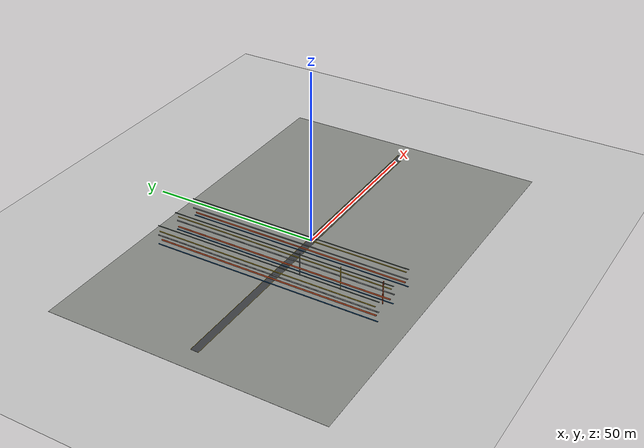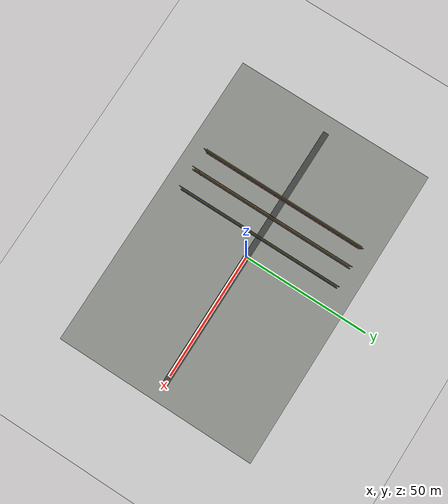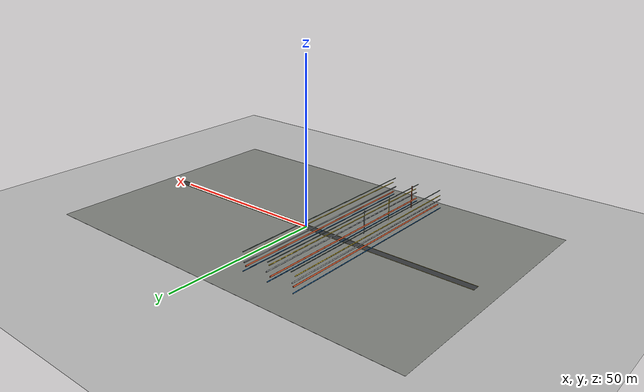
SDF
<sdf version="1.6">
 <world name="default">
  <include><uri>model://sun</uri></include>
  <include><uri>model://ground_plane</uri></include>
  <model name="pipe_factory_floor">
   <static>true</static>
   <link name="concrete_pad">
    <pose>0 0 0.01 0 0 0</pose>
    <collision name="collision"><geometry><box><size>120 80 0.02</size></box></geometry></collision>
    <visual name="visual">
     <geometry><box><size>120 80 0.02</size></box></geometry>
     <material><ambient>0.42 0.43 0.42 1</ambient><diffuse>0.55 0.56 0.54 1</diffuse></material>
    </visual>
   </link>
   <link name="center_safety_lane">
    <pose>0 0 0.035 0 0 0</pose>
    <visual name="visual">
     <geometry><box><size>108 2.2 0.03</size></box></geometry>
     <material><ambient>0.16 0.17 0.18 1</ambient><diffuse>0.25 0.26 0.27 1</diffuse></material>
    </visual>
   </link>
   <link name="north_lane_line">
    <pose>0 1.15 0.055 0 0 0</pose>
    <visual name="visual">
     <geometry><box><size>108 0.08 0.02</size></box></geometry>
     <material><ambient>0.48 0.42 0.12 1</ambient><diffuse>0.86 0.75 0.20 1</diffuse></material>
    </visual>
   </link>
   <link name="south_lane_line">
    <pose>0 -1.15 0.055 0 0 0</pose>
    <visual name="visual">
     <geometry><box><size>108 0.08 0.02</size></box></geometry>
     <material><ambient>0.48 0.42 0.12 1</ambient><diffuse>0.86 0.75 0.20 1</diffuse></material>
    </visual>
   </link>
  </model>
  <model name="dense_interwoven_pipe_grid">
   <static>true</static>
   <link name="y_pipe_c03_l0">
    <pose>-24.28 0 1.90 1.5708 0 0</pose>
    <collision name="collision">
     <geometry><cylinder><radius>0.120</radius><length>66.00</length></cylinder></geometry>
    </collision>
    <visual name="visual">
     <geometry><cylinder><radius>0.120</radius><length>66.00</length></cylinder></geometry>
     <material><ambient>0.05 0.22 0.36 1</ambient><diffuse>0.10 0.38 0.62 1</diffuse></material>
    </visual>
   </link>
   <link name="y_pipe_c03_l1">
    <pose>-23.72 0 3.10 1.5708 0 0</pose>
    <collision name="collision">
     <geometry><cylinder><radius>0.180</radius><length>64.50</length></cylinder></geometry>
    </collision>
    <visual name="visual">
     <geometry><cylinder><radius>0.180</radius><length>64.50</length></cylinder></geometry>
     <material><ambient>0.45 0.17 0.08 1</ambient><diffuse>0.77 0.30 0.14 1</diffuse></material>
    </visual>
   </link>
   <link name="y_pipe_c03_l2">
    <pose>-24.00 0 4.55 1.5708 0 0</pose>
    <collision name="collision">
     <geometry><cylinder><radius>0.140</radius><length>66.00</length></cylinder></geometry>
    </collision>
    <visual name="visual">
     <geometry><cylinder><radius>0.140</radius><length>66.00</length></cylinder></geometry>
     <material><ambient>0.34 0.35 0.36 1</ambient><diffuse>0.58 0.60 0.61 1</diffuse></material>
    </visual>
   </link>
   <link name="y_pipe_c03_l3">
    <pose>-24.28 0 6.10 1.5708 0 0</pose>
    <collision name="collision">
     <geometry><cylinder><radius>0.120</radius><length>64.50</length></cylinder></geometry>
    </collision>
    <visual name="visual">
     <geometry><cylinder><radius>0.120</radius><length>64.50</length></cylinder></geometry>
     <material><ambient>0.48 0.42 0.12 1</ambient><diffuse>0.86 0.75 0.20 1</diffuse></material>
    </visual>
   </link>
   <link name="y_pipe_c03_l4">
    <pose>-23.72 0 7.35 1.5708 0 0</pose>
    <collision name="collision">
     <geometry><cylinder><radius>0.100</radius><length>66.00</length></cylinder></geometry>
    </collision>
    <visual name="visual">
     <geometry><cylinder><radius>0.100</radius><length>66.00</length></cylinder></geometry>
     <material><ambient>0.20 0.24 0.23 1</ambient><diffuse>0.36 0.43 0.40 1</diffuse></material>
    </visual>
   </link>
   <link name="y_pipe_c04_l0">
    <pose>-16.00 0 1.90 1.5708 0 0</pose>
    <collision name="collision">
     <geometry><cylinder><radius>0.120</radius><length>66.00</length></cylinder></geometry>
    </collision>
    <visual name="visual">
     <geometry><cylinder><radius>0.120</radius><length>66.00</length></cylinder></geometry>
     <material><ambient>0.05 0.22 0.36 1</ambient><diffuse>0.10 0.38 0.62 1</diffuse></material>
    </visual>
   </link>
   <link name="y_pipe_c04_l1">
    <pose>-16.28 0 3.10 1.5708 0 0</pose>
    <collision name="collision">
     <geometry><cylinder><radius>0.180</radius><length>64.50</length></cylinder></geometry>
    </collision>
    <visual name="visual">
     <geometry><cylinder><radius>0.180</radius><length>64.50</length></cylinder></geometry>
     <material><ambient>0.45 0.17 0.08 1</ambient><diffuse>0.77 0.30 0.14 1</diffuse></material>
    </visual>
   </link>
   <link name="y_pipe_c04_l2">
    <pose>-15.72 0 4.55 1.5708 0 0</pose>
    <collision name="collision">
     <geometry><cylinder><radius>0.140</radius><length>66.00</length></cylinder></geometry>
    </collision>
    <visual name="visual">
     <geometry><cylinder><radius>0.140</radius><length>66.00</length></cylinder></geometry>
     <material><ambient>0.34 0.35 0.36 1</ambient><diffuse>0.58 0.60 0.61 1</diffuse></material>
    </visual>
   </link>
   <link name="y_pipe_c04_l3">
    <pose>-16.00 0 6.10 1.5708 0 0</pose>
    <collision name="collision">
     <geometry><cylinder><radius>0.120</radius><length>64.50</length></cylinder></geometry>
    </collision>
    <visual name="visual">
     <geometry><cylinder><radius>0.120</radius><length>64.50</length></cylinder></geometry>
     <material><ambient>0.48 0.42 0.12 1</ambient><diffuse>0.86 0.75 0.20 1</diffuse></material>
    </visual>
   </link>
   <link name="y_pipe_c04_l4">
    <pose>-16.28 0 7.35 1.5708 0 0</pose>
    <collision name="collision">
     <geometry><cylinder><radius>0.100</radius><length>66.00</length></cylinder></geometry>
    </collision>
    <visual name="visual">
     <geometry><cylinder><radius>0.100</radius><length>66.00</length></cylinder></geometry>
     <material><ambient>0.20 0.24 0.23 1</ambient><diffuse>0.36 0.43 0.40 1</diffuse></material>
    </visual>
   </link>
   <link name="y_pipe_c05_l0">
    <pose>-7.72 0 1.90 1.5708 0 0</pose>
    <collision name="collision">
     <geometry><cylinder><radius>0.120</radius><length>66.00</length></cylinder></geometry>
    </collision>
    <visual name="visual">
     <geometry><cylinder><radius>0.120</radius><length>66.00</length></cylinder></geometry>
     <material><ambient>0.05 0.22 0.36 1</ambient><diffuse>0.10 0.38 0.62 1</diffuse></material>
    </visual>
   </link>
   <link name="y_pipe_c05_l1">
    <pose>-8.00 0 3.10 1.5708 0 0</pose>
    <collision name="collision">
     <geometry><cylinder><radius>0.180</radius><length>64.50</length></cylinder></geometry>
    </collision>
    <visual name="visual">
     <geometry><cylinder><radius>0.180</radius><length>64.50</length></cylinder></geometry>
     <material><ambient>0.45 0.17 0.08 1</ambient><diffuse>0.77 0.30 0.14 1</diffuse></material>
    </visual>
   </link>
   <link name="y_pipe_c05_l2">
    <pose>-8.28 0 4.55 1.5708 0 0</pose>
    <collision name="collision">
     <geometry><cylinder><radius>0.140</radius><length>66.00</length></cylinder></geometry>
    </collision>
    <visual name="visual">
     <geometry><cylinder><radius>0.140</radius><length>66.00</length></cylinder></geometry>
     <material><ambient>0.34 0.35 0.36 1</ambient><diffuse>0.58 0.60 0.61 1</diffuse></material>
    </visual>
   </link>
   <link name="y_pipe_c05_l3">
    <pose>-7.72 0 6.10 1.5708 0 0</pose>
    <collision name="collision">
     <geometry><cylinder><radius>0.120</radius><length>64.50</length></cylinder></geometry>
    </collision>
    <visual name="visual">
     <geometry><cylinder><radius>0.120</radius><length>64.50</length></cylinder></geometry>
     <material><ambient>0.48 0.42 0.12 1</ambient><diffuse>0.86 0.75 0.20 1</diffuse></material>
    </visual>
   </link>
   <link name="y_pipe_c05_l4">
    <pose>-8.00 0 7.35 1.5708 0 0</pose>
    <collision name="collision">
     <geometry><cylinder><radius>0.100</radius><length>66.00</length></cylinder></geometry>
    </collision>
    <visual name="visual">
     <geometry><cylinder><radius>0.100</radius><length>66.00</length></cylinder></geometry>
     <material><ambient>0.20 0.24 0.23 1</ambient><diffuse>0.36 0.43 0.40 1</diffuse></material>
    </visual>
   </link>
   <link name="riser_02_00">
    <pose>-16.0 -30.0 4.15 0 0 0</pose>
    <collision name="collision">
     <geometry><cylinder><radius>0.140</radius><length>6.90</length></cylinder></geometry>
    </collision>
    <visual name="visual">
     <geometry><cylinder><radius>0.140</radius><length>6.90</length></cylinder></geometry>
     <material><ambient>0.45 0.17 0.08 1</ambient><diffuse>0.77 0.30 0.14 1</diffuse></material>
    </visual>
   </link>
   <link name="riser_02_01">
    <pose>-16.0 -18.0 4.15 0 0 0</pose>
    <collision name="collision">
     <geometry><cylinder><radius>0.100</radius><length>6.90</length></cylinder></geometry>
    </collision>
    <visual name="visual">
     <geometry><cylinder><radius>0.100</radius><length>6.90</length></cylinder></geometry>
     <material><ambient>0.48 0.42 0.12 1</ambient><diffuse>0.86 0.75 0.20 1</diffuse></material>
    </visual>
   </link>
   <link name="riser_02_02">
    <pose>-16.0 -6.0 4.15 0 0 0</pose>
    <collision name="collision">
     <geometry><cylinder><radius>0.120</radius><length>6.90</length></cylinder></geometry>
    </collision>
    <visual name="visual">
     <geometry><cylinder><radius>0.120</radius><length>6.90</length></cylinder></geometry>
     <material><ambient>0.34 0.35 0.36 1</ambient><diffuse>0.58 0.60 0.61 1</diffuse></material>
    </visual>
   </link>
  </model>
 </world>
</sdf>
